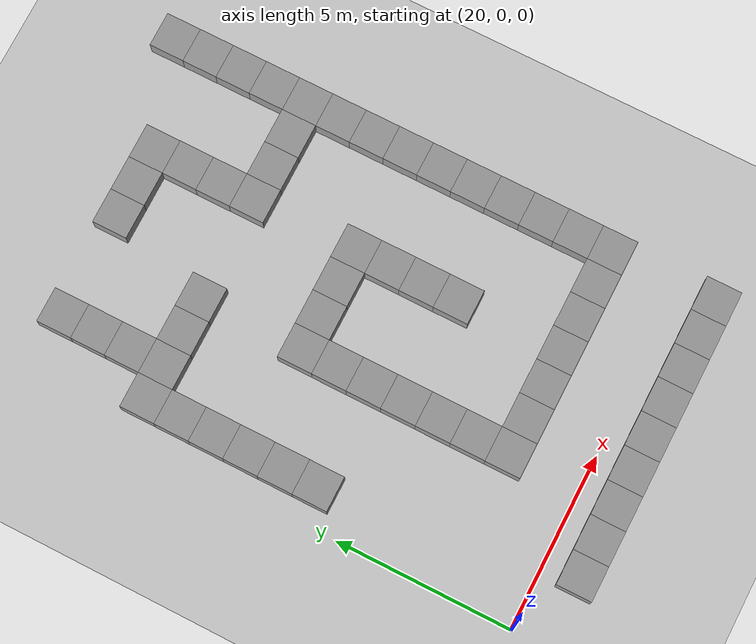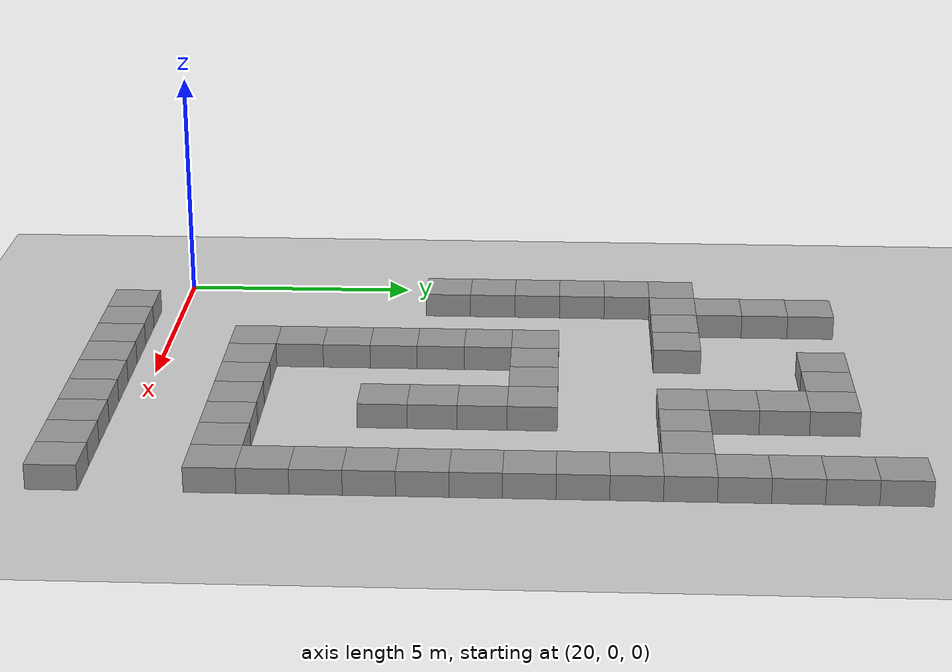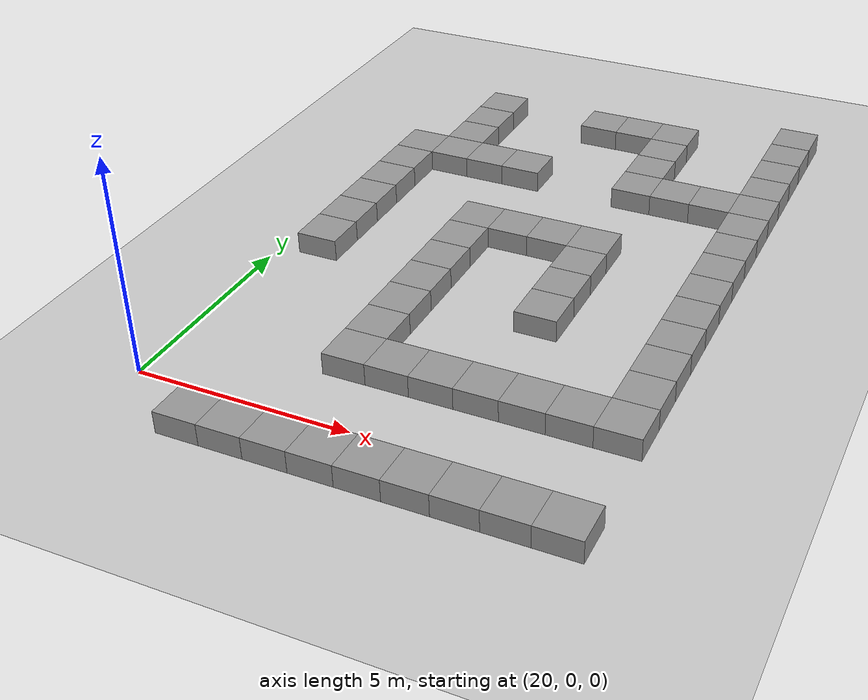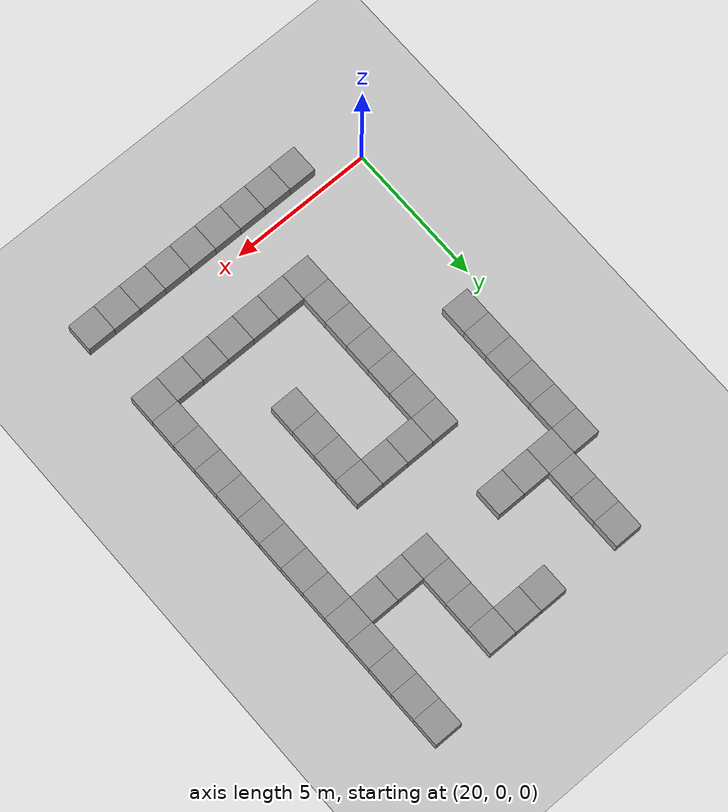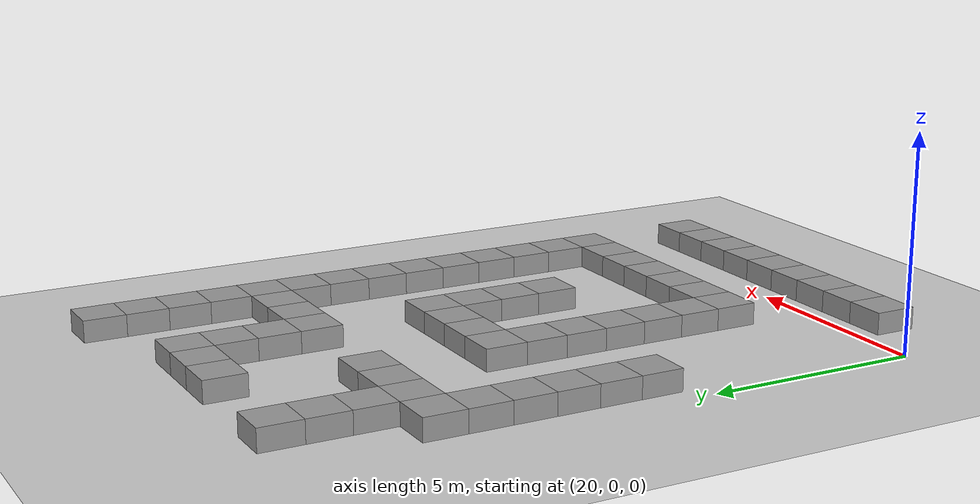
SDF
<sdf version="1.4">
 <world name="default">
  <model name="ground_plane">
   <static>1</static>
   <link name="link">
    <collision name="collision">
     <geometry><plane><normal>0 0 1</normal><size>100 100</size></plane></geometry>
     <surface><friction><ode><mu>100</mu><mu2>50</mu2></ode></friction></surface>
    </collision>
    <visual name="visual">
     <cast_shadows>0</cast_shadows>
     <geometry><plane><normal>0 0 1</normal><size>100 100</size></plane></geometry>
     <material>
      <script><uri>file://media/materials/scripts/gazebo.material</uri><name>Gazebo/Grey</name></script>
     </material>
    </visual>
    <velocity_decay><linear>0</linear><angular>0</angular></velocity_decay>
   </link>
  </model>
  <model name="unit_box_22">
   <pose>22 -1 0 0 -0 0</pose>
   <link name="link">
    <inertial>
     <mass>1</mass>
     <inertia><ixx>1</ixx><ixy>0</ixy><ixz>0</ixz><iyy>1</iyy><iyz>0</iyz><izz>1</izz></inertia>
    </inertial>
    <collision name="collision"><geometry><box><size>1 1 1</size></box></geometry></collision>
    <visual name="visual">
     <geometry><box><size>1 1 1</size></box></geometry>
     <material>
      <script><uri>file://media/materials/scripts/gazebo.material</uri><name>Gazebo/Grey</name></script>
     </material>
    </visual>
    <velocity_decay><linear>0</linear><angular>0</angular></velocity_decay>
   </link>
   <static>1</static>
  </model>
  <model name="unit_box_23">
   <pose>23 -1 0 0 -0 0</pose>
   <link name="link">
    <inertial>
     <mass>1</mass>
     <inertia><ixx>1</ixx><ixy>0</ixy><ixz>0</ixz><iyy>1</iyy><iyz>0</iyz><izz>1</izz></inertia>
    </inertial>
    <collision name="collision"><geometry><box><size>1 1 1</size></box></geometry></collision>
    <visual name="visual">
     <geometry><box><size>1 1 1</size></box></geometry>
     <material>
      <script><uri>file://media/materials/scripts/gazebo.material</uri><name>Gazebo/Grey</name></script>
     </material>
    </visual>
    <velocity_decay><linear>0</linear><angular>0</angular></velocity_decay>
   </link>
   <static>1</static>
  </model>
  <model name="unit_box_24">
   <pose>24 -1 0 0 -0 0</pose>
   <link name="link">
    <inertial>
     <mass>1</mass>
     <inertia><ixx>1</ixx><ixy>0</ixy><ixz>0</ixz><iyy>1</iyy><iyz>0</iyz><izz>1</izz></inertia>
    </inertial>
    <collision name="collision"><geometry><box><size>1 1 1</size></box></geometry></collision>
    <visual name="visual">
     <geometry><box><size>1 1 1</size></box></geometry>
     <material>
      <script><uri>file://media/materials/scripts/gazebo.material</uri><name>Gazebo/Grey</name></script>
     </material>
    </visual>
    <velocity_decay><linear>0</linear><angular>0</angular></velocity_decay>
   </link>
   <static>1</static>
  </model>
  <model name="unit_box_25">
   <pose>25 -1 0 0 -0 0</pose>
   <link name="link">
    <inertial>
     <mass>1</mass>
     <inertia><ixx>1</ixx><ixy>0</ixy><ixz>0</ixz><iyy>1</iyy><iyz>0</iyz><izz>1</izz></inertia>
    </inertial>
    <collision name="collision"><geometry><box><size>1 1 1</size></box></geometry></collision>
    <visual name="visual">
     <geometry><box><size>1 1 1</size></box></geometry>
     <material>
      <script><uri>file://media/materials/scripts/gazebo.material</uri><name>Gazebo/Grey</name></script>
     </material>
    </visual>
    <velocity_decay><linear>0</linear><angular>0</angular></velocity_decay>
   </link>
   <static>1</static>
  </model>
  <model name="unit_box_26">
   <pose>26 -1 0 0 -0 0</pose>
   <link name="link">
    <inertial>
     <mass>1</mass>
     <inertia><ixx>1</ixx><ixy>0</ixy><ixz>0</ixz><iyy>1</iyy><iyz>0</iyz><izz>1</izz></inertia>
    </inertial>
    <collision name="collision"><geometry><box><size>1 1 1</size></box></geometry></collision>
    <visual name="visual">
     <geometry><box><size>1 1 1</size></box></geometry>
     <material>
      <script><uri>file://media/materials/scripts/gazebo.material</uri><name>Gazebo/Grey</name></script>
     </material>
    </visual>
    <velocity_decay><linear>0</linear><angular>0</angular></velocity_decay>
   </link>
   <static>1</static>
  </model>
  <model name="unit_box_27">
   <pose>27 -1 0 0 -0 0</pose>
   <link name="link">
    <inertial>
     <mass>1</mass>
     <inertia><ixx>1</ixx><ixy>0</ixy><ixz>0</ixz><iyy>1</iyy><iyz>0</iyz><izz>1</izz></inertia>
    </inertial>
    <collision name="collision"><geometry><box><size>1 1 1</size></box></geometry></collision>
    <visual name="visual">
     <geometry><box><size>1 1 1</size></box></geometry>
     <material>
      <script><uri>file://media/materials/scripts/gazebo.material</uri><name>Gazebo/Grey</name></script>
     </material>
    </visual>
    <velocity_decay><linear>0</linear><angular>0</angular></velocity_decay>
   </link>
   <static>1</static>
  </model>
  <model name="unit_box_28">
   <pose>28 -1 0 0 -0 0</pose>
   <link name="link">
    <inertial>
     <mass>1</mass>
     <inertia><ixx>1</ixx><ixy>0</ixy><ixz>0</ixz><iyy>1</iyy><iyz>0</iyz><izz>1</izz></inertia>
    </inertial>
    <collision name="collision"><geometry><box><size>1 1 1</size></box></geometry></collision>
    <visual name="visual">
     <geometry><box><size>1 1 1</size></box></geometry>
     <material>
      <script><uri>file://media/materials/scripts/gazebo.material</uri><name>Gazebo/Grey</name></script>
     </material>
    </visual>
    <velocity_decay><linear>0</linear><angular>0</angular></velocity_decay>
   </link>
   <static>1</static>
  </model>
  <model name="unit_box_29">
   <pose>29 -1 0 0 -0 0</pose>
   <link name="link">
    <inertial>
     <mass>1</mass>
     <inertia><ixx>1</ixx><ixy>0</ixy><ixz>0</ixz><iyy>1</iyy><iyz>0</iyz><izz>1</izz></inertia>
    </inertial>
    <collision name="collision"><geometry><box><size>1 1 1</size></box></geometry></collision>
    <visual name="visual">
     <geometry><box><size>1 1 1</size></box></geometry>
     <material>
      <script><uri>file://media/materials/scripts/gazebo.material</uri><name>Gazebo/Grey</name></script>
     </material>
    </visual>
    <velocity_decay><linear>0</linear><angular>0</angular></velocity_decay>
   </link>
   <static>1</static>
  </model>
  <model name="unit_box_30">
   <pose>30 -1 0 0 -0 0</pose>
   <link name="link">
    <inertial>
     <mass>1</mass>
     <inertia><ixx>1</ixx><ixy>0</ixy><ixz>0</ixz><iyy>1</iyy><iyz>0</iyz><izz>1</izz></inertia>
    </inertial>
    <collision name="collision"><geometry><box><size>1 1 1</size></box></geometry></collision>
    <visual name="visual">
     <geometry><box><size>1 1 1</size></box></geometry>
     <material>
      <script><uri>file://media/materials/scripts/gazebo.material</uri><name>Gazebo/Grey</name></script>
     </material>
    </visual>
    <velocity_decay><linear>0</linear><angular>0</angular></velocity_decay>
   </link>
   <static>1</static>
  </model>
  <model name="unit_box_31">
   <pose>30 2 0 0 -0 0</pose>
   <link name="link">
    <inertial>
     <mass>1</mass>
     <inertia><ixx>1</ixx><ixy>0</ixy><ixz>0</ixz><iyy>1</iyy><iyz>0</iyz><izz>1</izz></inertia>
    </inertial>
    <collision name="collision"><geometry><box><size>1 1 1</size></box></geometry></collision>
    <visual name="visual">
     <geometry><box><size>1 1 1</size></box></geometry>
     <material>
      <script><uri>file://media/materials/scripts/gazebo.material</uri><name>Gazebo/Grey</name></script>
     </material>
    </visual>
    <velocity_decay><linear>0</linear><angular>0</angular></velocity_decay>
   </link>
   <static>1</static>
  </model>
  <model name="unit_box_32">
   <pose>30 3 0 0 -0 0</pose>
   <link name="link">
    <inertial>
     <mass>1</mass>
     <inertia><ixx>1</ixx><ixy>0</ixy><ixz>0</ixz><iyy>1</iyy><iyz>0</iyz><izz>1</izz></inertia>
    </inertial>
    <collision name="collision"><geometry><box><size>1 1 1</size></box></geometry></collision>
    <visual name="visual">
     <geometry><box><size>1 1 1</size></box></geometry>
     <material>
      <script><uri>file://media/materials/scripts/gazebo.material</uri><name>Gazebo/Grey</name></script>
     </material>
    </visual>
    <velocity_decay><linear>0</linear><angular>0</angular></velocity_decay>
   </link>
   <static>1</static>
  </model>
  <model name="unit_box_33">
   <pose>30 4 0 0 -0 0</pose>
   <link name="link">
    <inertial>
     <mass>1</mass>
     <inertia><ixx>1</ixx><ixy>0</ixy><ixz>0</ixz><iyy>1</iyy><iyz>0</iyz><izz>1</izz></inertia>
    </inertial>
    <collision name="collision"><geometry><box><size>1 1 1</size></box></geometry></collision>
    <visual name="visual">
     <geometry><box><size>1 1 1</size></box></geometry>
     <material>
      <script><uri>file://media/materials/scripts/gazebo.material</uri><name>Gazebo/Grey</name></script>
     </material>
    </visual>
    <velocity_decay><linear>0</linear><angular>0</angular></velocity_decay>
   </link>
   <static>1</static>
  </model>
  <model name="unit_box_34">
   <pose>30 5 0 0 -0 0</pose>
   <link name="link">
    <inertial>
     <mass>1</mass>
     <inertia><ixx>1</ixx><ixy>0</ixy><ixz>0</ixz><iyy>1</iyy><iyz>0</iyz><izz>1</izz></inertia>
    </inertial>
    <collision name="collision"><geometry><box><size>1 1 1</size></box></geometry></collision>
    <visual name="visual">
     <geometry><box><size>1 1 1</size></box></geometry>
     <material>
      <script><uri>file://media/materials/scripts/gazebo.material</uri><name>Gazebo/Grey</name></script>
     </material>
    </visual>
    <velocity_decay><linear>0</linear><angular>0</angular></velocity_decay>
   </link>
   <static>1</static>
  </model>
  <model name="unit_box_35">
   <pose>30 6 0 0 -0 0</pose>
   <link name="link">
    <inertial>
     <mass>1</mass>
     <inertia><ixx>1</ixx><ixy>0</ixy><ixz>0</ixz><iyy>1</iyy><iyz>0</iyz><izz>1</izz></inertia>
    </inertial>
    <collision name="collision"><geometry><box><size>1 1 1</size></box></geometry></collision>
    <visual name="visual">
     <geometry><box><size>1 1 1</size></box></geometry>
     <material>
      <script><uri>file://media/materials/scripts/gazebo.material</uri><name>Gazebo/Grey</name></script>
     </material>
    </visual>
    <velocity_decay><linear>0</linear><angular>0</angular></velocity_decay>
   </link>
   <static>1</static>
  </model>
  <model name="unit_box_36">
   <pose>30 7 0 0 -0 0</pose>
   <link name="link">
    <inertial>
     <mass>1</mass>
     <inertia><ixx>1</ixx><ixy>0</ixy><ixz>0</ixz><iyy>1</iyy><iyz>0</iyz><izz>1</izz></inertia>
    </inertial>
    <collision name="collision"><geometry><box><size>1 1 1</size></box></geometry></collision>
    <visual name="visual">
     <geometry><box><size>1 1 1</size></box></geometry>
     <material>
      <script><uri>file://media/materials/scripts/gazebo.material</uri><name>Gazebo/Grey</name></script>
     </material>
    </visual>
    <velocity_decay><linear>0</linear><angular>0</angular></velocity_decay>
   </link>
   <static>1</static>
  </model>
  <model name="unit_box_37">
   <pose>30 8 0 0 -0 0</pose>
   <link name="link">
    <inertial>
     <mass>1</mass>
     <inertia><ixx>1</ixx><ixy>0</ixy><ixz>0</ixz><iyy>1</iyy><iyz>0</iyz><izz>1</izz></inertia>
    </inertial>
    <collision name="collision"><geometry><box><size>1 1 1</size></box></geometry></collision>
    <visual name="visual">
     <geometry><box><size>1 1 1</size></box></geometry>
     <material>
      <script><uri>file://media/materials/scripts/gazebo.material</uri><name>Gazebo/Grey</name></script>
     </material>
    </visual>
    <velocity_decay><linear>0</linear><angular>0</angular></velocity_decay>
   </link>
   <static>1</static>
  </model>
  <model name="unit_box_38">
   <pose>30 9 0 0 -0 0</pose>
   <link name="link">
    <inertial>
     <mass>1</mass>
     <inertia><ixx>1</ixx><ixy>0</ixy><ixz>0</ixz><iyy>1</iyy><iyz>0</iyz><izz>1</izz></inertia>
    </inertial>
    <collision name="collision"><geometry><box><size>1 1 1</size></box></geometry></collision>
    <visual name="visual">
     <geometry><box><size>1 1 1</size></box></geometry>
     <material>
      <script><uri>file://media/materials/scripts/gazebo.material</uri><name>Gazebo/Grey</name></script>
     </material>
    </visual>
    <velocity_decay><linear>0</linear><angular>0</angular></velocity_decay>
   </link>
   <static>1</static>
  </model>
  <model name="unit_box_39">
   <pose>30 10 0 0 -0 0</pose>
   <link name="link">
    <inertial>
     <mass>1</mass>
     <inertia><ixx>1</ixx><ixy>0</ixy><ixz>0</ixz><iyy>1</iyy><iyz>0</iyz><izz>1</izz></inertia>
    </inertial>
    <collision name="collision"><geometry><box><size>1 1 1</size></box></geometry></collision>
    <visual name="visual">
     <geometry><box><size>1 1 1</size></box></geometry>
     <material>
      <script><uri>file://media/materials/scripts/gazebo.material</uri><name>Gazebo/Grey</name></script>
     </material>
    </visual>
    <velocity_decay><linear>0</linear><angular>0</angular></velocity_decay>
   </link>
   <static>1</static>
  </model>
  <model name="unit_box_40">
   <pose>30 11 0 0 -0 0</pose>
   <link name="link">
    <inertial>
     <mass>1</mass>
     <inertia><ixx>1</ixx><ixy>0</ixy><ixz>0</ixz><iyy>1</iyy><iyz>0</iyz><izz>1</izz></inertia>
    </inertial>
    <collision name="collision"><geometry><box><size>1 1 1</size></box></geometry></collision>
    <visual name="visual">
     <geometry><box><size>1 1 1</size></box></geometry>
     <material>
      <script><uri>file://media/materials/scripts/gazebo.material</uri><name>Gazebo/Grey</name></script>
     </material>
    </visual>
    <velocity_decay><linear>0</linear><angular>0</angular></velocity_decay>
   </link>
   <static>1</static>
  </model>
  <model name="unit_box_41">
   <pose>30 12 0 0 -0 0</pose>
   <link name="link">
    <inertial>
     <mass>1</mass>
     <inertia><ixx>1</ixx><ixy>0</ixy><ixz>0</ixz><iyy>1</iyy><iyz>0</iyz><izz>1</izz></inertia>
    </inertial>
    <collision name="collision"><geometry><box><size>1 1 1</size></box></geometry></collision>
    <visual name="visual">
     <geometry><box><size>1 1 1</size></box></geometry>
     <material>
      <script><uri>file://media/materials/scripts/gazebo.material</uri><name>Gazebo/Grey</name></script>
     </material>
    </visual>
    <velocity_decay><linear>0</linear><angular>0</angular></velocity_decay>
   </link>
   <static>1</static>
  </model>
  <model name="unit_box_42">
   <pose>30 13 0 0 -0 0</pose>
   <link name="link">
    <inertial>
     <mass>1</mass>
     <inertia><ixx>1</ixx><ixy>0</ixy><ixz>0</ixz><iyy>1</iyy><iyz>0</iyz><izz>1</izz></inertia>
    </inertial>
    <collision name="collision"><geometry><box><size>1 1 1</size></box></geometry></collision>
    <visual name="visual">
     <geometry><box><size>1 1 1</size></box></geometry>
     <material>
      <script><uri>file://media/materials/scripts/gazebo.material</uri><name>Gazebo/Grey</name></script>
     </material>
    </visual>
    <velocity_decay><linear>0</linear><angular>0</angular></velocity_decay>
   </link>
   <static>1</static>
  </model>
  <model name="unit_box_43">
   <pose>30 14 0 0 -0 0</pose>
   <link name="link">
    <inertial>
     <mass>1</mass>
     <inertia><ixx>1</ixx><ixy>0</ixy><ixz>0</ixz><iyy>1</iyy><iyz>0</iyz><izz>1</izz></inertia>
    </inertial>
    <collision name="collision"><geometry><box><size>1 1 1</size></box></geometry></collision>
    <visual name="visual">
     <geometry><box><size>1 1 1</size></box></geometry>
     <material>
      <script><uri>file://media/materials/scripts/gazebo.material</uri><name>Gazebo/Grey</name></script>
     </material>
    </visual>
    <velocity_decay><linear>0</linear><angular>0</angular></velocity_decay>
   </link>
   <static>1</static>
  </model>
  <model name="unit_box_44">
   <pose>30 15 0 0 -0 0</pose>
   <link name="link">
    <inertial>
     <mass>1</mass>
     <inertia><ixx>1</ixx><ixy>0</ixy><ixz>0</ixz><iyy>1</iyy><iyz>0</iyz><izz>1</izz></inertia>
    </inertial>
    <collision name="collision"><geometry><box><size>1 1 1</size></box></geometry></collision>
    <visual name="visual">
     <geometry><box><size>1 1 1</size></box></geometry>
     <material>
      <script><uri>file://media/materials/scripts/gazebo.material</uri><name>Gazebo/Grey</name></script>
     </material>
    </visual>
    <velocity_decay><linear>0</linear><angular>0</angular></velocity_decay>
   </link>
   <static>1</static>
  </model>
  <model name="unit_box_192">
   <pose>21 11 0 0 -0 0</pose>
   <link name="link">
    <inertial>
     <mass>1</mass>
     <inertia><ixx>1</ixx><ixy>0</ixy><ixz>0</ixz><iyy>1</iyy><iyz>0</iyz><izz>1</izz></inertia>
    </inertial>
    <collision name="collision"><geometry><box><size>1 1 1</size></box></geometry></collision>
    <visual name="visual">
     <geometry><box><size>1 1 1</size></box></geometry>
     <material>
      <script><uri>file://media/materials/scripts/gazebo.material</uri><name>Gazebo/Grey</name></script>
     </material>
    </visual>
    <velocity_decay><linear>0</linear><angular>0</angular></velocity_decay>
   </link>
   <static>1</static>
  </model>
  <model name="unit_box_193">
   <pose>21 10 0 0 -0 0</pose>
   <link name="link">
    <inertial>
     <mass>1</mass>
     <inertia><ixx>1</ixx><ixy>0</ixy><ixz>0</ixz><iyy>1</iyy><iyz>0</iyz><izz>1</izz></inertia>
    </inertial>
    <collision name="collision"><geometry><box><size>1 1 1</size></box></geometry></collision>
    <visual name="visual">
     <geometry><box><size>1 1 1</size></box></geometry>
     <material>
      <script><uri>file://media/materials/scripts/gazebo.material</uri><name>Gazebo/Grey</name></script>
     </material>
    </visual>
    <velocity_decay><linear>0</linear><angular>0</angular></velocity_decay>
   </link>
   <static>1</static>
  </model>
  <model name="unit_box_194">
   <pose>21 9 0 0 -0 0</pose>
   <link name="link">
    <inertial>
     <mass>1</mass>
     <inertia><ixx>1</ixx><ixy>0</ixy><ixz>0</ixz><iyy>1</iyy><iyz>0</iyz><izz>1</izz></inertia>
    </inertial>
    <collision name="collision"><geometry><box><size>1 1 1</size></box></geometry></collision>
    <visual name="visual">
     <geometry><box><size>1 1 1</size></box></geometry>
     <material>
      <script><uri>file://media/materials/scripts/gazebo.material</uri><name>Gazebo/Grey</name></script>
     </material>
    </visual>
    <velocity_decay><linear>0</linear><angular>0</angular></velocity_decay>
   </link>
   <static>1</static>
  </model>
  <model name="unit_box_195">
   <pose>21 8 0 0 -0 0</pose>
   <link name="link">
    <inertial>
     <mass>1</mass>
     <inertia><ixx>1</ixx><ixy>0</ixy><ixz>0</ixz><iyy>1</iyy><iyz>0</iyz><izz>1</izz></inertia>
    </inertial>
    <collision name="collision"><geometry><box><size>1 1 1</size></box></geometry></collision>
    <visual name="visual">
     <geometry><box><size>1 1 1</size></box></geometry>
     <material>
      <script><uri>file://media/materials/scripts/gazebo.material</uri><name>Gazebo/Grey</name></script>
     </material>
    </visual>
    <velocity_decay><linear>0</linear><angular>0</angular></velocity_decay>
   </link>
   <static>1</static>
  </model>
  <model name="unit_box_196">
   <pose>21 7 0 0 -0 0</pose>
   <link name="link">
    <inertial>
     <mass>1</mass>
     <inertia><ixx>1</ixx><ixy>0</ixy><ixz>0</ixz><iyy>1</iyy><iyz>0</iyz><izz>1</izz></inertia>
    </inertial>
    <collision name="collision"><geometry><box><size>1 1 1</size></box></geometry></collision>
    <visual name="visual">
     <geometry><box><size>1 1 1</size></box></geometry>
     <material>
      <script><uri>file://media/materials/scripts/gazebo.material</uri><name>Gazebo/Grey</name></script>
     </material>
    </visual>
    <velocity_decay><linear>0</linear><angular>0</angular></velocity_decay>
   </link>
   <static>1</static>
  </model>
  <model name="unit_box_197">
   <pose>21 6 0 0 -0 0</pose>
   <link name="link">
    <inertial>
     <mass>1</mass>
     <inertia><ixx>1</ixx><ixy>0</ixy><ixz>0</ixz><iyy>1</iyy><iyz>0</iyz><izz>1</izz></inertia>
    </inertial>
    <collision name="collision"><geometry><box><size>1 1 1</size></box></geometry></collision>
    <visual name="visual">
     <geometry><box><size>1 1 1</size></box></geometry>
     <material>
      <script><uri>file://media/materials/scripts/gazebo.material</uri><name>Gazebo/Grey</name></script>
     </material>
    </visual>
    <velocity_decay><linear>0</linear><angular>0</angular></velocity_decay>
   </link>
   <static>1</static>
  </model>
  <model name="unit_box_202">
   <pose>29 2 0 0 -0 0</pose>
   <link name="link">
    <inertial>
     <mass>1</mass>
     <inertia><ixx>1</ixx><ixy>0</ixy><ixz>0</ixz><iyy>1</iyy><iyz>0</iyz><izz>1</izz></inertia>
    </inertial>
    <collision name="collision"><geometry><box><size>1 1 1</size></box></geometry></collision>
    <visual name="visual">
     <geometry><box><size>1 1 1</size></box></geometry>
     <material>
      <script><uri>file://media/materials/scripts/gazebo.material</uri><name>Gazebo/Grey</name></script>
     </material>
    </visual>
    <velocity_decay><linear>0</linear><angular>0</angular></velocity_decay>
   </link>
   <static>1</static>
  </model>
  <model name="unit_box_203">
   <pose>28 2 0 0 -0 0</pose>
   <link name="link">
    <inertial>
     <mass>1</mass>
     <inertia><ixx>1</ixx><ixy>0</ixy><ixz>0</ixz><iyy>1</iyy><iyz>0</iyz><izz>1</izz></inertia>
    </inertial>
    <collision name="collision"><geometry><box><size>1 1 1</size></box></geometry></collision>
    <visual name="visual">
     <geometry><box><size>1 1 1</size></box></geometry>
     <material>
      <script><uri>file://media/materials/scripts/gazebo.material</uri><name>Gazebo/Grey</name></script>
     </material>
    </visual>
    <velocity_decay><linear>0</linear><angular>0</angular></velocity_decay>
   </link>
   <static>1</static>
  </model>
  <model name="unit_box_204">
   <pose>27 2 0 0 -0 0</pose>
   <link name="link">
    <inertial>
     <mass>1</mass>
     <inertia><ixx>1</ixx><ixy>0</ixy><ixz>0</ixz><iyy>1</iyy><iyz>0</iyz><izz>1</izz></inertia>
    </inertial>
    <collision name="collision"><geometry><box><size>1 1 1</size></box></geometry></collision>
    <visual name="visual">
     <geometry><box><size>1 1 1</size></box></geometry>
     <material>
      <script><uri>file://media/materials/scripts/gazebo.material</uri><name>Gazebo/Grey</name></script>
     </material>
    </visual>
    <velocity_decay><linear>0</linear><angular>0</angular></velocity_decay>
   </link>
   <static>1</static>
  </model>
  <model name="unit_box_205">
   <pose>26 2 0 0 -0 0</pose>
   <link name="link">
    <inertial>
     <mass>1</mass>
     <inertia><ixx>1</ixx><ixy>0</ixy><ixz>0</ixz><iyy>1</iyy><iyz>0</iyz><izz>1</izz></inertia>
    </inertial>
    <collision name="collision"><geometry><box><size>1 1 1</size></box></geometry></collision>
    <visual name="visual">
     <geometry><box><size>1 1 1</size></box></geometry>
     <material>
      <script><uri>file://media/materials/scripts/gazebo.material</uri><name>Gazebo/Grey</name></script>
     </material>
    </visual>
    <velocity_decay><linear>0</linear><angular>0</angular></velocity_decay>
   </link>
   <static>1</static>
  </model>
  <model name="unit_box_206">
   <pose>25 2 0 0 -0 0</pose>
   <link name="link">
    <inertial>
     <mass>1</mass>
     <inertia><ixx>1</ixx><ixy>0</ixy><ixz>0</ixz><iyy>1</iyy><iyz>0</iyz><izz>1</izz></inertia>
    </inertial>
    <collision name="collision"><geometry><box><size>1 1 1</size></box></geometry></collision>
    <visual name="visual">
     <geometry><box><size>1 1 1</size></box></geometry>
     <material>
      <script><uri>file://media/materials/scripts/gazebo.material</uri><name>Gazebo/Grey</name></script>
     </material>
    </visual>
    <velocity_decay><linear>0</linear><angular>0</angular></velocity_decay>
   </link>
   <static>1</static>
  </model>
  <model name="unit_box_207">
   <pose>24 2 0 0 -0 0</pose>
   <link name="link">
    <inertial>
     <mass>1</mass>
     <inertia><ixx>1</ixx><ixy>0</ixy><ixz>0</ixz><iyy>1</iyy><iyz>0</iyz><izz>1</izz></inertia>
    </inertial>
    <collision name="collision"><geometry><box><size>1 1 1</size></box></geometry></collision>
    <visual name="visual">
     <geometry><box><size>1 1 1</size></box></geometry>
     <material>
      <script><uri>file://media/materials/scripts/gazebo.material</uri><name>Gazebo/Grey</name></script>
     </material>
    </visual>
    <velocity_decay><linear>0</linear><angular>0</angular></velocity_decay>
   </link>
   <static>1</static>
  </model>
  <model name="unit_box_208">
   <pose>24 3 0 0 -0 0</pose>
   <link name="link">
    <inertial>
     <mass>1</mass>
     <inertia><ixx>1</ixx><ixy>0</ixy><ixz>0</ixz><iyy>1</iyy><iyz>0</iyz><izz>1</izz></inertia>
    </inertial>
    <collision name="collision"><geometry><box><size>1 1 1</size></box></geometry></collision>
    <visual name="visual">
     <geometry><box><size>1 1 1</size></box></geometry>
     <material>
      <script><uri>file://media/materials/scripts/gazebo.material</uri><name>Gazebo/Grey</name></script>
     </material>
    </visual>
    <velocity_decay><linear>0</linear><angular>0</angular></velocity_decay>
   </link>
   <static>1</static>
  </model>
  <model name="unit_box_209">
   <pose>24 4 0 0 -0 0</pose>
   <link name="link">
    <inertial>
     <mass>1</mass>
     <inertia><ixx>1</ixx><ixy>0</ixy><ixz>0</ixz><iyy>1</iyy><iyz>0</iyz><izz>1</izz></inertia>
    </inertial>
    <collision name="collision"><geometry><box><size>1 1 1</size></box></geometry></collision>
    <visual name="visual">
     <geometry><box><size>1 1 1</size></box></geometry>
     <material>
      <script><uri>file://media/materials/scripts/gazebo.material</uri><name>Gazebo/Grey</name></script>
     </material>
    </visual>
    <velocity_decay><linear>0</linear><angular>0</angular></velocity_decay>
   </link>
   <static>1</static>
  </model>
  <model name="unit_box_210">
   <pose>24 5 0 0 -0 0</pose>
   <link name="link">
    <inertial>
     <mass>1</mass>
     <inertia><ixx>1</ixx><ixy>0</ixy><ixz>0</ixz><iyy>1</iyy><iyz>0</iyz><izz>1</izz></inertia>
    </inertial>
    <collision name="collision"><geometry><box><size>1 1 1</size></box></geometry></collision>
    <visual name="visual">
     <geometry><box><size>1 1 1</size></box></geometry>
     <material>
      <script><uri>file://media/materials/scripts/gazebo.material</uri><name>Gazebo/Grey</name></script>
     </material>
    </visual>
    <velocity_decay><linear>0</linear><angular>0</angular></velocity_decay>
   </link>
   <static>1</static>
  </model>
  <model name="unit_box_211">
   <pose>24 6 0 0 -0 0</pose>
   <link name="link">
    <inertial>
     <mass>1</mass>
     <inertia><ixx>1</ixx><ixy>0</ixy><ixz>0</ixz><iyy>1</iyy><iyz>0</iyz><izz>1</izz></inertia>
    </inertial>
    <collision name="collision"><geometry><box><size>1 1 1</size></box></geometry></collision>
    <visual name="visual">
     <geometry><box><size>1 1 1</size></box></geometry>
     <material>
      <script><uri>file://media/materials/scripts/gazebo.material</uri><name>Gazebo/Grey</name></script>
     </material>
    </visual>
    <velocity_decay><linear>0</linear><angular>0</angular></velocity_decay>
   </link>
   <static>1</static>
  </model>
  <model name="unit_box_212">
   <pose>24 7 0 0 -0 0</pose>
   <link name="link">
    <inertial>
     <mass>1</mass>
     <inertia><ixx>1</ixx><ixy>0</ixy><ixz>0</ixz><iyy>1</iyy><iyz>0</iyz><izz>1</izz></inertia>
    </inertial>
    <collision name="collision"><geometry><box><size>1 1 1</size></box></geometry></collision>
    <visual name="visual">
     <geometry><box><size>1 1 1</size></box></geometry>
     <material>
      <script><uri>file://media/materials/scripts/gazebo.material</uri><name>Gazebo/Grey</name></script>
     </material>
    </visual>
    <velocity_decay><linear>0</linear><angular>0</angular></velocity_decay>
   </link>
   <static>1</static>
  </model>
  <model name="unit_box_213">
   <pose>24 8 0 0 -0 0</pose>
   <link name="link">
    <inertial>
     <mass>1</mass>
     <inertia><ixx>1</ixx><ixy>0</ixy><ixz>0</ixz><iyy>1</iyy><iyz>0</iyz><izz>1</izz></inertia>
    </inertial>
    <collision name="collision"><geometry><box><size>1 1 1</size></box></geometry></collision>
    <visual name="visual">
     <geometry><box><size>1 1 1</size></box></geometry>
     <material>
      <script><uri>file://media/materials/scripts/gazebo.material</uri><name>Gazebo/Grey</name></script>
     </material>
    </visual>
    <velocity_decay><linear>0</linear><angular>0</angular></velocity_decay>
   </link>
   <static>1</static>
  </model>
  <model name="unit_box_214">
   <pose>25 8 0 0 -0 0</pose>
   <link name="link">
    <inertial>
     <mass>1</mass>
     <inertia><ixx>1</ixx><ixy>0</ixy><ixz>0</ixz><iyy>1</iyy><iyz>0</iyz><izz>1</izz></inertia>
    </inertial>
    <collision name="collision"><geometry><box><size>1 1 1</size></box></geometry></collision>
    <visual name="visual">
     <geometry><box><size>1 1 1</size></box></geometry>
     <material>
      <script><uri>file://media/materials/scripts/gazebo.material</uri><name>Gazebo/Grey</name></script>
     </material>
    </visual>
    <velocity_decay><linear>0</linear><angular>0</angular></velocity_decay>
   </link>
   <static>1</static>
  </model>
  <model name="unit_box_215">
   <pose>26 8 0 0 -0 0</pose>
   <link name="link">
    <inertial>
     <mass>1</mass>
     <inertia><ixx>1</ixx><ixy>0</ixy><ixz>0</ixz><iyy>1</iyy><iyz>0</iyz><izz>1</izz></inertia>
    </inertial>
    <collision name="collision"><geometry><box><size>1 1 1</size></box></geometry></collision>
    <visual name="visual">
     <geometry><box><size>1 1 1</size></box></geometry>
     <material>
      <script><uri>file://media/materials/scripts/gazebo.material</uri><name>Gazebo/Grey</name></script>
     </material>
    </visual>
    <velocity_decay><linear>0</linear><angular>0</angular></velocity_decay>
   </link>
   <static>1</static>
  </model>
  <model name="unit_box_216">
   <pose>27 8 0 0 -0 0</pose>
   <link name="link">
    <inertial>
     <mass>1</mass>
     <inertia><ixx>1</ixx><ixy>0</ixy><ixz>0</ixz><iyy>1</iyy><iyz>0</iyz><izz>1</izz></inertia>
    </inertial>
    <collision name="collision"><geometry><box><size>1 1 1</size></box></geometry></collision>
    <visual name="visual">
     <geometry><box><size>1 1 1</size></box></geometry>
     <material>
      <script><uri>file://media/materials/scripts/gazebo.material</uri><name>Gazebo/Grey</name></script>
     </material>
    </visual>
    <velocity_decay><linear>0</linear><angular>0</angular></velocity_decay>
   </link>
   <static>1</static>
  </model>
  <model name="unit_box_217">
   <pose>27 7 0 0 -0 0</pose>
   <link name="link">
    <inertial>
     <mass>1</mass>
     <inertia><ixx>1</ixx><ixy>0</ixy><ixz>0</ixz><iyy>1</iyy><iyz>0</iyz><izz>1</izz></inertia>
    </inertial>
    <collision name="collision"><geometry><box><size>1 1 1</size></box></geometry></collision>
    <visual name="visual">
     <geometry><box><size>1 1 1</size></box></geometry>
     <material>
      <script><uri>file://media/materials/scripts/gazebo.material</uri><name>Gazebo/Grey</name></script>
     </material>
    </visual>
    <velocity_decay><linear>0</linear><angular>0</angular></velocity_decay>
   </link>
   <static>1</static>
  </model>
  <model name="unit_box_218">
   <pose>27 6 0 0 -0 0</pose>
   <link name="link">
    <inertial>
     <mass>1</mass>
     <inertia><ixx>1</ixx><ixy>0</ixy><ixz>0</ixz><iyy>1</iyy><iyz>0</iyz><izz>1</izz></inertia>
    </inertial>
    <collision name="collision"><geometry><box><size>1 1 1</size></box></geometry></collision>
    <visual name="visual">
     <geometry><box><size>1 1 1</size></box></geometry>
     <material>
      <script><uri>file://media/materials/scripts/gazebo.material</uri><name>Gazebo/Grey</name></script>
     </material>
    </visual>
    <velocity_decay><linear>0</linear><angular>0</angular></velocity_decay>
   </link>
   <static>1</static>
  </model>
  <model name="unit_box_219">
   <pose>27 5 0 0 -0 0</pose>
   <link name="link">
    <inertial>
     <mass>1</mass>
     <inertia><ixx>1</ixx><ixy>0</ixy><ixz>0</ixz><iyy>1</iyy><iyz>0</iyz><izz>1</izz></inertia>
    </inertial>
    <collision name="collision"><geometry><box><size>1 1 1</size></box></geometry></collision>
    <visual name="visual">
     <geometry><box><size>1 1 1</size></box></geometry>
     <material>
      <script><uri>file://media/materials/scripts/gazebo.material</uri><name>Gazebo/Grey</name></script>
     </material>
    </visual>
    <velocity_decay><linear>0</linear><angular>0</angular></velocity_decay>
   </link>
   <static>1</static>
  </model>
  <model name="unit_box_220">
   <pose>22 11 0 0 -0 0</pose>
   <link name="link">
    <inertial>
     <mass>1</mass>
     <inertia><ixx>1</ixx><ixy>0</ixy><ixz>0</ixz><iyy>1</iyy><iyz>0</iyz><izz>1</izz></inertia>
    </inertial>
    <collision name="collision"><geometry><box><size>1 1 1</size></box></geometry></collision>
    <visual name="visual">
     <geometry><box><size>1 1 1</size></box></geometry>
     <material>
      <script><uri>file://media/materials/scripts/gazebo.material</uri><name>Gazebo/Grey</name></script>
     </material>
    </visual>
    <velocity_decay><linear>0</linear><angular>0</angular></velocity_decay>
   </link>
   <static>1</static>
  </model>
  <model name="unit_box_221">
   <pose>23 11 0 0 -0 0</pose>
   <link name="link">
    <inertial>
     <mass>1</mass>
     <inertia><ixx>1</ixx><ixy>0</ixy><ixz>0</ixz><iyy>1</iyy><iyz>0</iyz><izz>1</izz></inertia>
    </inertial>
    <collision name="collision"><geometry><box><size>1 1 1</size></box></geometry></collision>
    <visual name="visual">
     <geometry><box><size>1 1 1</size></box></geometry>
     <material>
      <script><uri>file://media/materials/scripts/gazebo.material</uri><name>Gazebo/Grey</name></script>
     </material>
    </visual>
    <velocity_decay><linear>0</linear><angular>0</angular></velocity_decay>
   </link>
   <static>1</static>
  </model>
  <model name="unit_box_222">
   <pose>24 11 0 0 -0 0</pose>
   <link name="link">
    <inertial>
     <mass>1</mass>
     <inertia><ixx>1</ixx><ixy>0</ixy><ixz>0</ixz><iyy>1</iyy><iyz>0</iyz><izz>1</izz></inertia>
    </inertial>
    <collision name="collision"><geometry><box><size>1 1 1</size></box></geometry></collision>
    <visual name="visual">
     <geometry><box><size>1 1 1</size></box></geometry>
     <material>
      <script><uri>file://media/materials/scripts/gazebo.material</uri><name>Gazebo/Grey</name></script>
     </material>
    </visual>
    <velocity_decay><linear>0</linear><angular>0</angular></velocity_decay>
   </link>
   <static>1</static>
  </model>
  <model name="unit_box_223">
   <pose>27 11 0 0 -0 0</pose>
   <link name="link">
    <inertial>
     <mass>1</mass>
     <inertia><ixx>1</ixx><ixy>0</ixy><ixz>0</ixz><iyy>1</iyy><iyz>0</iyz><izz>1</izz></inertia>
    </inertial>
    <collision name="collision"><geometry><box><size>1 1 1</size></box></geometry></collision>
    <visual name="visual">
     <geometry><box><size>1 1 1</size></box></geometry>
     <material>
      <script><uri>file://media/materials/scripts/gazebo.material</uri><name>Gazebo/Grey</name></script>
     </material>
    </visual>
    <velocity_decay><linear>0</linear><angular>0</angular></velocity_decay>
   </link>
   <static>1</static>
  </model>
  <model name="unit_box_224">
   <pose>28 11 0 0 -0 0</pose>
   <link name="link">
    <inertial>
     <mass>1</mass>
     <inertia><ixx>1</ixx><ixy>0</ixy><ixz>0</ixz><iyy>1</iyy><iyz>0</iyz><izz>1</izz></inertia>
    </inertial>
    <collision name="collision"><geometry><box><size>1 1 1</size></box></geometry></collision>
    <visual name="visual">
     <geometry><box><size>1 1 1</size></box></geometry>
     <material>
      <script><uri>file://media/materials/scripts/gazebo.material</uri><name>Gazebo/Grey</name></script>
     </material>
    </visual>
    <velocity_decay><linear>0</linear><angular>0</angular></velocity_decay>
   </link>
   <static>1</static>
  </model>
  <model name="unit_box_225">
   <pose>29 11 0 0 -0 0</pose>
   <link name="link">
    <inertial>
     <mass>1</mass>
     <inertia><ixx>1</ixx><ixy>0</ixy><ixz>0</ixz><iyy>1</iyy><iyz>0</iyz><izz>1</izz></inertia>
    </inertial>
    <collision name="collision"><geometry><box><size>1 1 1</size></box></geometry></collision>
    <visual name="visual">
     <geometry><box><size>1 1 1</size></box></geometry>
     <material>
      <script><uri>file://media/materials/scripts/gazebo.material</uri><name>Gazebo/Grey</name></script>
     </material>
    </visual>
    <velocity_decay><linear>0</linear><angular>0</angular></velocity_decay>
   </link>
   <static>1</static>
  </model>
  <model name="unit_box_300">
   <pose>22 12 0 0 -0 0</pose>
   <link name="link">
    <inertial>
     <mass>1</mass>
     <inertia><ixx>1</ixx><ixy>0</ixy><ixz>0</ixz><iyy>1</iyy><iyz>0</iyz><izz>1</izz></inertia>
    </inertial>
    <collision name="collision"><geometry><box><size>1 1 1</size></box></geometry></collision>
    <visual name="visual">
     <geometry><box><size>1 1 1</size></box></geometry>
     <material>
      <script><uri>file://media/materials/scripts/gazebo.material</uri><name>Gazebo/Grey</name></script>
     </material>
    </visual>
    <velocity_decay><linear>0</linear><angular>0</angular></velocity_decay>
   </link>
   <static>1</static>
  </model>
  <model name="unit_box_301">
   <pose>22 13 0 0 -0 0</pose>
   <link name="link">
    <inertial>
     <mass>1</mass>
     <inertia><ixx>1</ixx><ixy>0</ixy><ixz>0</ixz><iyy>1</iyy><iyz>0</iyz><izz>1</izz></inertia>
    </inertial>
    <collision name="collision"><geometry><box><size>1 1 1</size></box></geometry></collision>
    <visual name="visual">
     <geometry><box><size>1 1 1</size></box></geometry>
     <material>
      <script><uri>file://media/materials/scripts/gazebo.material</uri><name>Gazebo/Grey</name></script>
     </material>
    </visual>
    <velocity_decay><linear>0</linear><angular>0</angular></velocity_decay>
   </link>
   <static>1</static>
  </model>
  <model name="unit_box_302">
   <pose>22 14 0 0 -0 0</pose>
   <link name="link">
    <inertial>
     <mass>1</mass>
     <inertia><ixx>1</ixx><ixy>0</ixy><ixz>0</ixz><iyy>1</iyy><iyz>0</iyz><izz>1</izz></inertia>
    </inertial>
    <collision name="collision"><geometry><box><size>1 1 1</size></box></geometry></collision>
    <visual name="visual">
     <geometry><box><size>1 1 1</size></box></geometry>
     <material>
      <script><uri>file://media/materials/scripts/gazebo.material</uri><name>Gazebo/Grey</name></script>
     </material>
    </visual>
    <velocity_decay><linear>0</linear><angular>0</angular></velocity_decay>
   </link>
   <static>1</static>
  </model>
  <model name="unit_box_316">
   <pose>27 12 0 0 -0 0</pose>
   <link name="link">
    <inertial>
     <mass>1</mass>
     <inertia><ixx>1</ixx><ixy>0</ixy><ixz>0</ixz><iyy>1</iyy><iyz>0</iyz><izz>1</izz></inertia>
    </inertial>
    <collision name="collision"><geometry><box><size>1 1 1</size></box></geometry></collision>
    <visual name="visual">
     <geometry><box><size>1 1 1</size></box></geometry>
     <material>
      <script><uri>file://media/materials/scripts/gazebo.material</uri><name>Gazebo/Grey</name></script>
     </material>
    </visual>
    <velocity_decay><linear>0</linear><angular>0</angular></velocity_decay>
   </link>
   <static>1</static>
  </model>
  <model name="unit_box_317">
   <pose>27 13 0 0 -0 0</pose>
   <link name="link">
    <inertial>
     <mass>1</mass>
     <inertia><ixx>1</ixx><ixy>0</ixy><ixz>0</ixz><iyy>1</iyy><iyz>0</iyz><izz>1</izz></inertia>
    </inertial>
    <collision name="collision"><geometry><box><size>1 1 1</size></box></geometry></collision>
    <visual name="visual">
     <geometry><box><size>1 1 1</size></box></geometry>
     <material>
      <script><uri>file://media/materials/scripts/gazebo.material</uri><name>Gazebo/Grey</name></script>
     </material>
    </visual>
    <velocity_decay><linear>0</linear><angular>0</angular></velocity_decay>
   </link>
   <static>1</static>
  </model>
  <model name="unit_box_318">
   <pose>27 14 0 0 -0 0</pose>
   <link name="link">
    <inertial>
     <mass>1</mass>
     <inertia><ixx>1</ixx><ixy>0</ixy><ixz>0</ixz><iyy>1</iyy><iyz>0</iyz><izz>1</izz></inertia>
    </inertial>
    <collision name="collision"><geometry><box><size>1 1 1</size></box></geometry></collision>
    <visual name="visual">
     <geometry><box><size>1 1 1</size></box></geometry>
     <material>
      <script><uri>file://media/materials/scripts/gazebo.material</uri><name>Gazebo/Grey</name></script>
     </material>
    </visual>
    <velocity_decay><linear>0</linear><angular>0</angular></velocity_decay>
   </link>
   <static>1</static>
  </model>
  <model name="unit_box_319">
   <pose>26 14 0 0 -0 0</pose>
   <link name="link">
    <inertial>
     <mass>1</mass>
     <inertia><ixx>1</ixx><ixy>0</ixy><ixz>0</ixz><iyy>1</iyy><iyz>0</iyz><izz>1</izz></inertia>
    </inertial>
    <collision name="collision"><geometry><box><size>1 1 1</size></box></geometry></collision>
    <visual name="visual">
     <geometry><box><size>1 1 1</size></box></geometry>
     <material>
      <script><uri>file://media/materials/scripts/gazebo.material</uri><name>Gazebo/Grey</name></script>
     </material>
    </visual>
    <velocity_decay><linear>0</linear><angular>0</angular></velocity_decay>
   </link>
   <static>1</static>
  </model>
  <model name="unit_box_320">
   <pose>25 14 0 0 -0 0</pose>
   <link name="link">
    <inertial>
     <mass>1</mass>
     <inertia><ixx>1</ixx><ixy>0</ixy><ixz>0</ixz><iyy>1</iyy><iyz>0</iyz><izz>1</izz></inertia>
    </inertial>
    <collision name="collision"><geometry><box><size>1 1 1</size></box></geometry></collision>
    <visual name="visual">
     <geometry><box><size>1 1 1</size></box></geometry>
     <material>
      <script><uri>file://media/materials/scripts/gazebo.material</uri><name>Gazebo/Grey</name></script>
     </material>
    </visual>
    <velocity_decay><linear>0</linear><angular>0</angular></velocity_decay>
   </link>
   <static>1</static>
  </model>
 </world>
</sdf>
